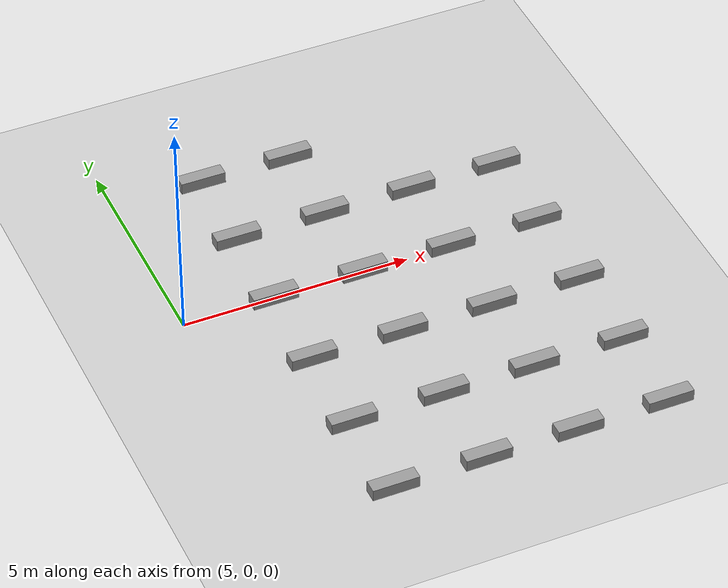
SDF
<sdf version="1.6">
 <world name="default">
  <model name="ground_plane">
   <static>1</static>
   <link name="link">
    <collision name="collision">
     <geometry><plane><normal>0 0 1</normal><size>100 100</size></plane></geometry>
     <surface><friction><ode><mu>100</mu><mu2>50</mu2></ode></friction></surface>
    </collision>
    <visual name="visual">
     <cast_shadows>0</cast_shadows>
     <geometry><plane><normal>0 0 1</normal><size>100 100</size></plane></geometry>
     <material>
      <script><uri>file://media/materials/scripts/gazebo.material</uri><name>Gazebo/Grey</name></script>
     </material>
    </visual>
   </link>
  </model>
  <model name="ss1_0_clone_1">
   <link name="link_0">
    <inertial>
     <mass>1</mass>
     <inertia>
      <ixx>0.166667</ixx>
      <ixy>0</ixy>
      <ixz>0</ixz>
      <iyy>0.166667</iyy>
      <iyz>0</iyz>
      <izz>0.166667</izz>
     </inertia>
    </inertial>
    <visual name="visual">
     <geometry><box><size>0.3 1 0.5</size></box></geometry>
     <material>
      <lighting>1</lighting>
      <script><uri>file://media/materials/scripts/gazebo.material</uri><name>Gazebo/Grey</name></script>
      <ambient>0.3 0.3 0.3 1</ambient>
      <diffuse>0.7 0.7 0.7 1</diffuse>
      <specular>0.01 0.01 0.01 1</specular>
      <emissive>0 0 0 1</emissive>
      <shader type="vertex"><normal_map>__default__</normal_map></shader>
     </material>
    </visual>
    <collision name="collision">
     <geometry><box><size>0.3 1 0.5</size></box></geometry>
     <surface>
      <friction>
       <ode><mu>1</mu><mu2>1</mu2><fdir1>0 0 0</fdir1><slip1>0</slip1><slip2>0</slip2></ode>
       <torsional>
        <coefficient>1</coefficient>
        <patch_radius>0</patch_radius>
        <surface_radius>0</surface_radius>
        <use_patch_radius>1</use_patch_radius>
        <ode><slip>0</slip></ode>
       </torsional>
      </friction>
      <bounce><restitution_coefficient>0</restitution_coefficient><threshold>1e+06</threshold></bounce>
      <contact>
       <collide_without_contact>0</collide_without_contact>
       <collide_without_contact_bitmask>1</collide_without_contact_bitmask>
       <collide_bitmask>1</collide_bitmask>
       <ode>
        <soft_cfm>0</soft_cfm>
        <soft_erp>0.2</soft_erp>
        <kp>1e+13</kp>
        <kd>1</kd>
        <max_vel>0.01</max_vel>
        <min_depth>0</min_depth>
       </ode>
       <bullet>
        <split_impulse>1</split_impulse>
        <split_impulse_penetration_threshold>-0.01</split_impulse_penetration_threshold>
        <soft_cfm>0</soft_cfm>
        <soft_erp>0.2</soft_erp>
        <kp>1e+13</kp>
        <kd>1</kd>
       </bullet>
      </contact>
     </surface>
    </collision>
   </link>
   <static>0</static>
   <pose>7 -6 0 0 -0 1.5708</pose>
  </model>
  <model name="ss1_0_clone_2">
   <link name="link_0">
    <inertial>
     <mass>1</mass>
     <inertia>
      <ixx>0.166667</ixx>
      <ixy>0</ixy>
      <ixz>0</ixz>
      <iyy>0.166667</iyy>
      <iyz>0</iyz>
      <izz>0.166667</izz>
     </inertia>
    </inertial>
    <visual name="visual">
     <geometry><box><size>0.3 1 0.5</size></box></geometry>
     <material>
      <lighting>1</lighting>
      <script><uri>file://media/materials/scripts/gazebo.material</uri><name>Gazebo/Grey</name></script>
      <ambient>0.3 0.3 0.3 1</ambient>
      <diffuse>0.7 0.7 0.7 1</diffuse>
      <specular>0.01 0.01 0.01 1</specular>
      <emissive>0 0 0 1</emissive>
      <shader type="vertex"><normal_map>__default__</normal_map></shader>
     </material>
    </visual>
    <collision name="collision">
     <geometry><box><size>0.3 1 0.5</size></box></geometry>
     <surface>
      <friction>
       <ode><mu>1</mu><mu2>1</mu2><fdir1>0 0 0</fdir1><slip1>0</slip1><slip2>0</slip2></ode>
       <torsional>
        <coefficient>1</coefficient>
        <patch_radius>0</patch_radius>
        <surface_radius>0</surface_radius>
        <use_patch_radius>1</use_patch_radius>
        <ode><slip>0</slip></ode>
       </torsional>
      </friction>
      <bounce><restitution_coefficient>0</restitution_coefficient><threshold>1e+06</threshold></bounce>
      <contact>
       <collide_without_contact>0</collide_without_contact>
       <collide_without_contact_bitmask>1</collide_without_contact_bitmask>
       <collide_bitmask>1</collide_bitmask>
       <ode>
        <soft_cfm>0</soft_cfm>
        <soft_erp>0.2</soft_erp>
        <kp>1e+13</kp>
        <kd>1</kd>
        <max_vel>0.01</max_vel>
        <min_depth>0</min_depth>
       </ode>
       <bullet>
        <split_impulse>1</split_impulse>
        <split_impulse_penetration_threshold>-0.01</split_impulse_penetration_threshold>
        <soft_cfm>0</soft_cfm>
        <soft_erp>0.2</soft_erp>
        <kp>1e+13</kp>
        <kd>1</kd>
       </bullet>
      </contact>
     </surface>
    </collision>
   </link>
   <static>0</static>
   <pose>9 -6 0 0 -0 1.5708</pose>
  </model>
  <model name="ss1_0_clone_3">
   <link name="link_0">
    <inertial>
     <mass>1</mass>
     <inertia>
      <ixx>0.166667</ixx>
      <ixy>0</ixy>
      <ixz>0</ixz>
      <iyy>0.166667</iyy>
      <iyz>0</iyz>
      <izz>0.166667</izz>
     </inertia>
    </inertial>
    <visual name="visual">
     <geometry><box><size>0.3 1 0.5</size></box></geometry>
     <material>
      <lighting>1</lighting>
      <script><uri>file://media/materials/scripts/gazebo.material</uri><name>Gazebo/Grey</name></script>
      <ambient>0.3 0.3 0.3 1</ambient>
      <diffuse>0.7 0.7 0.7 1</diffuse>
      <specular>0.01 0.01 0.01 1</specular>
      <emissive>0 0 0 1</emissive>
      <shader type="vertex"><normal_map>__default__</normal_map></shader>
     </material>
    </visual>
    <collision name="collision">
     <geometry><box><size>0.3 1 0.5</size></box></geometry>
     <surface>
      <friction>
       <ode><mu>1</mu><mu2>1</mu2><fdir1>0 0 0</fdir1><slip1>0</slip1><slip2>0</slip2></ode>
       <torsional>
        <coefficient>1</coefficient>
        <patch_radius>0</patch_radius>
        <surface_radius>0</surface_radius>
        <use_patch_radius>1</use_patch_radius>
        <ode><slip>0</slip></ode>
       </torsional>
      </friction>
      <bounce><restitution_coefficient>0</restitution_coefficient><threshold>1e+06</threshold></bounce>
      <contact>
       <collide_without_contact>0</collide_without_contact>
       <collide_without_contact_bitmask>1</collide_without_contact_bitmask>
       <collide_bitmask>1</collide_bitmask>
       <ode>
        <soft_cfm>0</soft_cfm>
        <soft_erp>0.2</soft_erp>
        <kp>1e+13</kp>
        <kd>1</kd>
        <max_vel>0.01</max_vel>
        <min_depth>0</min_depth>
       </ode>
       <bullet>
        <split_impulse>1</split_impulse>
        <split_impulse_penetration_threshold>-0.01</split_impulse_penetration_threshold>
        <soft_cfm>0</soft_cfm>
        <soft_erp>0.2</soft_erp>
        <kp>1e+13</kp>
        <kd>1</kd>
       </bullet>
      </contact>
     </surface>
    </collision>
   </link>
   <static>0</static>
   <pose>11 -6 0 0 -0 1.5708</pose>
  </model>
  <model name="ss1_0_clone_4">
   <link name="link_0">
    <inertial>
     <mass>1</mass>
     <inertia>
      <ixx>0.166667</ixx>
      <ixy>0</ixy>
      <ixz>0</ixz>
      <iyy>0.166667</iyy>
      <iyz>0</iyz>
      <izz>0.166667</izz>
     </inertia>
    </inertial>
    <visual name="visual">
     <geometry><box><size>0.3 1 0.5</size></box></geometry>
     <material>
      <lighting>1</lighting>
      <script><uri>file://media/materials/scripts/gazebo.material</uri><name>Gazebo/Grey</name></script>
      <ambient>0.3 0.3 0.3 1</ambient>
      <diffuse>0.7 0.7 0.7 1</diffuse>
      <specular>0.01 0.01 0.01 1</specular>
      <emissive>0 0 0 1</emissive>
      <shader type="vertex"><normal_map>__default__</normal_map></shader>
     </material>
    </visual>
    <collision name="collision">
     <geometry><box><size>0.3 1 0.5</size></box></geometry>
     <surface>
      <friction>
       <ode><mu>1</mu><mu2>1</mu2><fdir1>0 0 0</fdir1><slip1>0</slip1><slip2>0</slip2></ode>
       <torsional>
        <coefficient>1</coefficient>
        <patch_radius>0</patch_radius>
        <surface_radius>0</surface_radius>
        <use_patch_radius>1</use_patch_radius>
        <ode><slip>0</slip></ode>
       </torsional>
      </friction>
      <bounce><restitution_coefficient>0</restitution_coefficient><threshold>1e+06</threshold></bounce>
      <contact>
       <collide_without_contact>0</collide_without_contact>
       <collide_without_contact_bitmask>1</collide_without_contact_bitmask>
       <collide_bitmask>1</collide_bitmask>
       <ode>
        <soft_cfm>0</soft_cfm>
        <soft_erp>0.2</soft_erp>
        <kp>1e+13</kp>
        <kd>1</kd>
        <max_vel>0.01</max_vel>
        <min_depth>0</min_depth>
       </ode>
       <bullet>
        <split_impulse>1</split_impulse>
        <split_impulse_penetration_threshold>-0.01</split_impulse_penetration_threshold>
        <soft_cfm>0</soft_cfm>
        <soft_erp>0.2</soft_erp>
        <kp>1e+13</kp>
        <kd>1</kd>
       </bullet>
      </contact>
     </surface>
    </collision>
   </link>
   <static>0</static>
   <pose>13 -6 0 0 -0 1.5708</pose>
  </model>
  <model name="ss1_0_clone_clone_1">
   <link name="link_0">
    <inertial>
     <mass>1</mass>
     <inertia>
      <ixx>0.166667</ixx>
      <ixy>0</ixy>
      <ixz>0</ixz>
      <iyy>0.166667</iyy>
      <iyz>0</iyz>
      <izz>0.166667</izz>
     </inertia>
    </inertial>
    <visual name="visual">
     <geometry><box><size>0.3 1 0.5</size></box></geometry>
     <material>
      <lighting>1</lighting>
      <script><uri>file://media/materials/scripts/gazebo.material</uri><name>Gazebo/Grey</name></script>
      <ambient>0.3 0.3 0.3 1</ambient>
      <diffuse>0.7 0.7 0.7 1</diffuse>
      <specular>0.01 0.01 0.01 1</specular>
      <emissive>0 0 0 1</emissive>
      <shader type="vertex"><normal_map>__default__</normal_map></shader>
     </material>
    </visual>
    <collision name="collision">
     <geometry><box><size>0.3 1 0.5</size></box></geometry>
     <surface>
      <friction>
       <ode><mu>1</mu><mu2>1</mu2><fdir1>0 0 0</fdir1><slip1>0</slip1><slip2>0</slip2></ode>
       <torsional>
        <coefficient>1</coefficient>
        <patch_radius>0</patch_radius>
        <surface_radius>0</surface_radius>
        <use_patch_radius>1</use_patch_radius>
        <ode><slip>0</slip></ode>
       </torsional>
      </friction>
      <bounce><restitution_coefficient>0</restitution_coefficient><threshold>1e+06</threshold></bounce>
      <contact>
       <collide_without_contact>0</collide_without_contact>
       <collide_without_contact_bitmask>1</collide_without_contact_bitmask>
       <collide_bitmask>1</collide_bitmask>
       <ode>
        <soft_cfm>0</soft_cfm>
        <soft_erp>0.2</soft_erp>
        <kp>1e+13</kp>
        <kd>1</kd>
        <max_vel>0.01</max_vel>
        <min_depth>0</min_depth>
       </ode>
       <bullet>
        <split_impulse>1</split_impulse>
        <split_impulse_penetration_threshold>-0.01</split_impulse_penetration_threshold>
        <soft_cfm>0</soft_cfm>
        <soft_erp>0.2</soft_erp>
        <kp>1e+13</kp>
        <kd>1</kd>
       </bullet>
      </contact>
     </surface>
    </collision>
   </link>
   <static>0</static>
   <pose>7 -4 0 0 -0 1.5708</pose>
  </model>
  <model name="ss1_0_clone_clone_2">
   <link name="link_0">
    <inertial>
     <mass>1</mass>
     <inertia>
      <ixx>0.166667</ixx>
      <ixy>0</ixy>
      <ixz>0</ixz>
      <iyy>0.166667</iyy>
      <iyz>0</iyz>
      <izz>0.166667</izz>
     </inertia>
    </inertial>
    <visual name="visual">
     <geometry><box><size>0.3 1 0.5</size></box></geometry>
     <material>
      <lighting>1</lighting>
      <script><uri>file://media/materials/scripts/gazebo.material</uri><name>Gazebo/Grey</name></script>
      <ambient>0.3 0.3 0.3 1</ambient>
      <diffuse>0.7 0.7 0.7 1</diffuse>
      <specular>0.01 0.01 0.01 1</specular>
      <emissive>0 0 0 1</emissive>
      <shader type="vertex"><normal_map>__default__</normal_map></shader>
     </material>
    </visual>
    <collision name="collision">
     <geometry><box><size>0.3 1 0.5</size></box></geometry>
     <surface>
      <friction>
       <ode><mu>1</mu><mu2>1</mu2><fdir1>0 0 0</fdir1><slip1>0</slip1><slip2>0</slip2></ode>
       <torsional>
        <coefficient>1</coefficient>
        <patch_radius>0</patch_radius>
        <surface_radius>0</surface_radius>
        <use_patch_radius>1</use_patch_radius>
        <ode><slip>0</slip></ode>
       </torsional>
      </friction>
      <bounce><restitution_coefficient>0</restitution_coefficient><threshold>1e+06</threshold></bounce>
      <contact>
       <collide_without_contact>0</collide_without_contact>
       <collide_without_contact_bitmask>1</collide_without_contact_bitmask>
       <collide_bitmask>1</collide_bitmask>
       <ode>
        <soft_cfm>0</soft_cfm>
        <soft_erp>0.2</soft_erp>
        <kp>1e+13</kp>
        <kd>1</kd>
        <max_vel>0.01</max_vel>
        <min_depth>0</min_depth>
       </ode>
       <bullet>
        <split_impulse>1</split_impulse>
        <split_impulse_penetration_threshold>-0.01</split_impulse_penetration_threshold>
        <soft_cfm>0</soft_cfm>
        <soft_erp>0.2</soft_erp>
        <kp>1e+13</kp>
        <kd>1</kd>
       </bullet>
      </contact>
     </surface>
    </collision>
   </link>
   <static>0</static>
   <pose>9 -4 0 0 -0 1.5708</pose>
  </model>
  <model name="ss1_0_clone_clone_3">
   <link name="link_0">
    <inertial>
     <mass>1</mass>
     <inertia>
      <ixx>0.166667</ixx>
      <ixy>0</ixy>
      <ixz>0</ixz>
      <iyy>0.166667</iyy>
      <iyz>0</iyz>
      <izz>0.166667</izz>
     </inertia>
    </inertial>
    <visual name="visual">
     <geometry><box><size>0.3 1 0.5</size></box></geometry>
     <material>
      <lighting>1</lighting>
      <script><uri>file://media/materials/scripts/gazebo.material</uri><name>Gazebo/Grey</name></script>
      <ambient>0.3 0.3 0.3 1</ambient>
      <diffuse>0.7 0.7 0.7 1</diffuse>
      <specular>0.01 0.01 0.01 1</specular>
      <emissive>0 0 0 1</emissive>
      <shader type="vertex"><normal_map>__default__</normal_map></shader>
     </material>
    </visual>
    <collision name="collision">
     <geometry><box><size>0.3 1 0.5</size></box></geometry>
     <surface>
      <friction>
       <ode><mu>1</mu><mu2>1</mu2><fdir1>0 0 0</fdir1><slip1>0</slip1><slip2>0</slip2></ode>
       <torsional>
        <coefficient>1</coefficient>
        <patch_radius>0</patch_radius>
        <surface_radius>0</surface_radius>
        <use_patch_radius>1</use_patch_radius>
        <ode><slip>0</slip></ode>
       </torsional>
      </friction>
      <bounce><restitution_coefficient>0</restitution_coefficient><threshold>1e+06</threshold></bounce>
      <contact>
       <collide_without_contact>0</collide_without_contact>
       <collide_without_contact_bitmask>1</collide_without_contact_bitmask>
       <collide_bitmask>1</collide_bitmask>
       <ode>
        <soft_cfm>0</soft_cfm>
        <soft_erp>0.2</soft_erp>
        <kp>1e+13</kp>
        <kd>1</kd>
        <max_vel>0.01</max_vel>
        <min_depth>0</min_depth>
       </ode>
       <bullet>
        <split_impulse>1</split_impulse>
        <split_impulse_penetration_threshold>-0.01</split_impulse_penetration_threshold>
        <soft_cfm>0</soft_cfm>
        <soft_erp>0.2</soft_erp>
        <kp>1e+13</kp>
        <kd>1</kd>
       </bullet>
      </contact>
     </surface>
    </collision>
   </link>
   <static>0</static>
   <pose>11 -4 0 0 -0 1.5708</pose>
  </model>
  <model name="ss1_0_clone_clone_4">
   <link name="link_0">
    <inertial>
     <mass>1</mass>
     <inertia>
      <ixx>0.166667</ixx>
      <ixy>0</ixy>
      <ixz>0</ixz>
      <iyy>0.166667</iyy>
      <iyz>0</iyz>
      <izz>0.166667</izz>
     </inertia>
    </inertial>
    <visual name="visual">
     <geometry><box><size>0.3 1 0.5</size></box></geometry>
     <material>
      <lighting>1</lighting>
      <script><uri>file://media/materials/scripts/gazebo.material</uri><name>Gazebo/Grey</name></script>
      <ambient>0.3 0.3 0.3 1</ambient>
      <diffuse>0.7 0.7 0.7 1</diffuse>
      <specular>0.01 0.01 0.01 1</specular>
      <emissive>0 0 0 1</emissive>
      <shader type="vertex"><normal_map>__default__</normal_map></shader>
     </material>
    </visual>
    <collision name="collision">
     <geometry><box><size>0.3 1 0.5</size></box></geometry>
     <surface>
      <friction>
       <ode><mu>1</mu><mu2>1</mu2><fdir1>0 0 0</fdir1><slip1>0</slip1><slip2>0</slip2></ode>
       <torsional>
        <coefficient>1</coefficient>
        <patch_radius>0</patch_radius>
        <surface_radius>0</surface_radius>
        <use_patch_radius>1</use_patch_radius>
        <ode><slip>0</slip></ode>
       </torsional>
      </friction>
      <bounce><restitution_coefficient>0</restitution_coefficient><threshold>1e+06</threshold></bounce>
      <contact>
       <collide_without_contact>0</collide_without_contact>
       <collide_without_contact_bitmask>1</collide_without_contact_bitmask>
       <collide_bitmask>1</collide_bitmask>
       <ode>
        <soft_cfm>0</soft_cfm>
        <soft_erp>0.2</soft_erp>
        <kp>1e+13</kp>
        <kd>1</kd>
        <max_vel>0.01</max_vel>
        <min_depth>0</min_depth>
       </ode>
       <bullet>
        <split_impulse>1</split_impulse>
        <split_impulse_penetration_threshold>-0.01</split_impulse_penetration_threshold>
        <soft_cfm>0</soft_cfm>
        <soft_erp>0.2</soft_erp>
        <kp>1e+13</kp>
        <kd>1</kd>
       </bullet>
      </contact>
     </surface>
    </collision>
   </link>
   <static>0</static>
   <pose>13 -4 0 0 -0 1.5708</pose>
  </model>
  <model name="ss1_0_clone_clone_7">
   <link name="link_0">
    <inertial>
     <mass>1</mass>
     <inertia>
      <ixx>0.166667</ixx>
      <ixy>0</ixy>
      <ixz>0</ixz>
      <iyy>0.166667</iyy>
      <iyz>0</iyz>
      <izz>0.166667</izz>
     </inertia>
    </inertial>
    <visual name="visual">
     <geometry><box><size>0.3 1 0.5</size></box></geometry>
     <material>
      <lighting>1</lighting>
      <script><uri>file://media/materials/scripts/gazebo.material</uri><name>Gazebo/Grey</name></script>
      <ambient>0.3 0.3 0.3 1</ambient>
      <diffuse>0.7 0.7 0.7 1</diffuse>
      <specular>0.01 0.01 0.01 1</specular>
      <emissive>0 0 0 1</emissive>
      <shader type="vertex"><normal_map>__default__</normal_map></shader>
     </material>
    </visual>
    <collision name="collision">
     <geometry><box><size>0.3 1 0.5</size></box></geometry>
     <surface>
      <friction>
       <ode><mu>1</mu><mu2>1</mu2><fdir1>0 0 0</fdir1><slip1>0</slip1><slip2>0</slip2></ode>
       <torsional>
        <coefficient>1</coefficient>
        <patch_radius>0</patch_radius>
        <surface_radius>0</surface_radius>
        <use_patch_radius>1</use_patch_radius>
        <ode><slip>0</slip></ode>
       </torsional>
      </friction>
      <bounce><restitution_coefficient>0</restitution_coefficient><threshold>1e+06</threshold></bounce>
      <contact>
       <collide_without_contact>0</collide_without_contact>
       <collide_without_contact_bitmask>1</collide_without_contact_bitmask>
       <collide_bitmask>1</collide_bitmask>
       <ode>
        <soft_cfm>0</soft_cfm>
        <soft_erp>0.2</soft_erp>
        <kp>1e+13</kp>
        <kd>1</kd>
        <max_vel>0.01</max_vel>
        <min_depth>0</min_depth>
       </ode>
       <bullet>
        <split_impulse>1</split_impulse>
        <split_impulse_penetration_threshold>-0.01</split_impulse_penetration_threshold>
        <soft_cfm>0</soft_cfm>
        <soft_erp>0.2</soft_erp>
        <kp>1e+13</kp>
        <kd>1</kd>
       </bullet>
      </contact>
     </surface>
    </collision>
   </link>
   <static>0</static>
   <pose>7 -2 0 0 -0 1.5708</pose>
  </model>
  <model name="ss1_0_clone_clone_8">
   <link name="link_0">
    <inertial>
     <mass>1</mass>
     <inertia>
      <ixx>0.166667</ixx>
      <ixy>0</ixy>
      <ixz>0</ixz>
      <iyy>0.166667</iyy>
      <iyz>0</iyz>
      <izz>0.166667</izz>
     </inertia>
    </inertial>
    <visual name="visual">
     <geometry><box><size>0.3 1 0.5</size></box></geometry>
     <material>
      <lighting>1</lighting>
      <script><uri>file://media/materials/scripts/gazebo.material</uri><name>Gazebo/Grey</name></script>
      <ambient>0.3 0.3 0.3 1</ambient>
      <diffuse>0.7 0.7 0.7 1</diffuse>
      <specular>0.01 0.01 0.01 1</specular>
      <emissive>0 0 0 1</emissive>
      <shader type="vertex"><normal_map>__default__</normal_map></shader>
     </material>
    </visual>
    <collision name="collision">
     <geometry><box><size>0.3 1 0.5</size></box></geometry>
     <surface>
      <friction>
       <ode><mu>1</mu><mu2>1</mu2><fdir1>0 0 0</fdir1><slip1>0</slip1><slip2>0</slip2></ode>
       <torsional>
        <coefficient>1</coefficient>
        <patch_radius>0</patch_radius>
        <surface_radius>0</surface_radius>
        <use_patch_radius>1</use_patch_radius>
        <ode><slip>0</slip></ode>
       </torsional>
      </friction>
      <bounce><restitution_coefficient>0</restitution_coefficient><threshold>1e+06</threshold></bounce>
      <contact>
       <collide_without_contact>0</collide_without_contact>
       <collide_without_contact_bitmask>1</collide_without_contact_bitmask>
       <collide_bitmask>1</collide_bitmask>
       <ode>
        <soft_cfm>0</soft_cfm>
        <soft_erp>0.2</soft_erp>
        <kp>1e+13</kp>
        <kd>1</kd>
        <max_vel>0.01</max_vel>
        <min_depth>0</min_depth>
       </ode>
       <bullet>
        <split_impulse>1</split_impulse>
        <split_impulse_penetration_threshold>-0.01</split_impulse_penetration_threshold>
        <soft_cfm>0</soft_cfm>
        <soft_erp>0.2</soft_erp>
        <kp>1e+13</kp>
        <kd>1</kd>
       </bullet>
      </contact>
     </surface>
    </collision>
   </link>
   <static>0</static>
   <pose>9 -2 0 0 -0 1.5708</pose>
  </model>
  <model name="ss1_0_clone_clone_9">
   <link name="link_0">
    <inertial>
     <mass>1</mass>
     <inertia>
      <ixx>0.166667</ixx>
      <ixy>0</ixy>
      <ixz>0</ixz>
      <iyy>0.166667</iyy>
      <iyz>0</iyz>
      <izz>0.166667</izz>
     </inertia>
    </inertial>
    <visual name="visual">
     <geometry><box><size>0.3 1 0.5</size></box></geometry>
     <material>
      <lighting>1</lighting>
      <script><uri>file://media/materials/scripts/gazebo.material</uri><name>Gazebo/Grey</name></script>
      <ambient>0.3 0.3 0.3 1</ambient>
      <diffuse>0.7 0.7 0.7 1</diffuse>
      <specular>0.01 0.01 0.01 1</specular>
      <emissive>0 0 0 1</emissive>
      <shader type="vertex"><normal_map>__default__</normal_map></shader>
     </material>
    </visual>
    <collision name="collision">
     <geometry><box><size>0.3 1 0.5</size></box></geometry>
     <surface>
      <friction>
       <ode><mu>1</mu><mu2>1</mu2><fdir1>0 0 0</fdir1><slip1>0</slip1><slip2>0</slip2></ode>
       <torsional>
        <coefficient>1</coefficient>
        <patch_radius>0</patch_radius>
        <surface_radius>0</surface_radius>
        <use_patch_radius>1</use_patch_radius>
        <ode><slip>0</slip></ode>
       </torsional>
      </friction>
      <bounce><restitution_coefficient>0</restitution_coefficient><threshold>1e+06</threshold></bounce>
      <contact>
       <collide_without_contact>0</collide_without_contact>
       <collide_without_contact_bitmask>1</collide_without_contact_bitmask>
       <collide_bitmask>1</collide_bitmask>
       <ode>
        <soft_cfm>0</soft_cfm>
        <soft_erp>0.2</soft_erp>
        <kp>1e+13</kp>
        <kd>1</kd>
        <max_vel>0.01</max_vel>
        <min_depth>0</min_depth>
       </ode>
       <bullet>
        <split_impulse>1</split_impulse>
        <split_impulse_penetration_threshold>-0.01</split_impulse_penetration_threshold>
        <soft_cfm>0</soft_cfm>
        <soft_erp>0.2</soft_erp>
        <kp>1e+13</kp>
        <kd>1</kd>
       </bullet>
      </contact>
     </surface>
    </collision>
   </link>
   <static>0</static>
   <pose>11 -2 0 0 -0 1.5708</pose>
  </model>
  <model name="ss1_0_clone_clone_10">
   <link name="link_0">
    <inertial>
     <mass>1</mass>
     <inertia>
      <ixx>0.166667</ixx>
      <ixy>0</ixy>
      <ixz>0</ixz>
      <iyy>0.166667</iyy>
      <iyz>0</iyz>
      <izz>0.166667</izz>
     </inertia>
    </inertial>
    <visual name="visual">
     <geometry><box><size>0.3 1 0.5</size></box></geometry>
     <material>
      <lighting>1</lighting>
      <script><uri>file://media/materials/scripts/gazebo.material</uri><name>Gazebo/Grey</name></script>
      <ambient>0.3 0.3 0.3 1</ambient>
      <diffuse>0.7 0.7 0.7 1</diffuse>
      <specular>0.01 0.01 0.01 1</specular>
      <emissive>0 0 0 1</emissive>
      <shader type="vertex"><normal_map>__default__</normal_map></shader>
     </material>
    </visual>
    <collision name="collision">
     <geometry><box><size>0.3 1 0.5</size></box></geometry>
     <surface>
      <friction>
       <ode><mu>1</mu><mu2>1</mu2><fdir1>0 0 0</fdir1><slip1>0</slip1><slip2>0</slip2></ode>
       <torsional>
        <coefficient>1</coefficient>
        <patch_radius>0</patch_radius>
        <surface_radius>0</surface_radius>
        <use_patch_radius>1</use_patch_radius>
        <ode><slip>0</slip></ode>
       </torsional>
      </friction>
      <bounce><restitution_coefficient>0</restitution_coefficient><threshold>1e+06</threshold></bounce>
      <contact>
       <collide_without_contact>0</collide_without_contact>
       <collide_without_contact_bitmask>1</collide_without_contact_bitmask>
       <collide_bitmask>1</collide_bitmask>
       <ode>
        <soft_cfm>0</soft_cfm>
        <soft_erp>0.2</soft_erp>
        <kp>1e+13</kp>
        <kd>1</kd>
        <max_vel>0.01</max_vel>
        <min_depth>0</min_depth>
       </ode>
       <bullet>
        <split_impulse>1</split_impulse>
        <split_impulse_penetration_threshold>-0.01</split_impulse_penetration_threshold>
        <soft_cfm>0</soft_cfm>
        <soft_erp>0.2</soft_erp>
        <kp>1e+13</kp>
        <kd>1</kd>
       </bullet>
      </contact>
     </surface>
    </collision>
   </link>
   <static>0</static>
   <pose>13 -2 0 0 -0 1.5708</pose>
  </model>
  <model name="ss1_0_clone_clone_13">
   <link name="link_0">
    <inertial>
     <mass>1</mass>
     <inertia>
      <ixx>0.166667</ixx>
      <ixy>0</ixy>
      <ixz>0</ixz>
      <iyy>0.166667</iyy>
      <iyz>0</iyz>
      <izz>0.166667</izz>
     </inertia>
    </inertial>
    <visual name="visual">
     <geometry><box><size>0.3 1 0.5</size></box></geometry>
     <material>
      <lighting>1</lighting>
      <script><uri>file://media/materials/scripts/gazebo.material</uri><name>Gazebo/Grey</name></script>
      <ambient>0.3 0.3 0.3 1</ambient>
      <diffuse>0.7 0.7 0.7 1</diffuse>
      <specular>0.01 0.01 0.01 1</specular>
      <emissive>0 0 0 1</emissive>
      <shader type="vertex"><normal_map>__default__</normal_map></shader>
     </material>
    </visual>
    <collision name="collision">
     <geometry><box><size>0.3 1 0.5</size></box></geometry>
     <surface>
      <friction>
       <ode><mu>1</mu><mu2>1</mu2><fdir1>0 0 0</fdir1><slip1>0</slip1><slip2>0</slip2></ode>
       <torsional>
        <coefficient>1</coefficient>
        <patch_radius>0</patch_radius>
        <surface_radius>0</surface_radius>
        <use_patch_radius>1</use_patch_radius>
        <ode><slip>0</slip></ode>
       </torsional>
      </friction>
      <bounce><restitution_coefficient>0</restitution_coefficient><threshold>1e+06</threshold></bounce>
      <contact>
       <collide_without_contact>0</collide_without_contact>
       <collide_without_contact_bitmask>1</collide_without_contact_bitmask>
       <collide_bitmask>1</collide_bitmask>
       <ode>
        <soft_cfm>0</soft_cfm>
        <soft_erp>0.2</soft_erp>
        <kp>1e+13</kp>
        <kd>1</kd>
        <max_vel>0.01</max_vel>
        <min_depth>0</min_depth>
       </ode>
       <bullet>
        <split_impulse>1</split_impulse>
        <split_impulse_penetration_threshold>-0.01</split_impulse_penetration_threshold>
        <soft_cfm>0</soft_cfm>
        <soft_erp>0.2</soft_erp>
        <kp>1e+13</kp>
        <kd>1</kd>
       </bullet>
      </contact>
     </surface>
    </collision>
   </link>
   <static>0</static>
   <pose>7 0 0 0 -0 1.5708</pose>
  </model>
  <model name="ss1_0_clone_clone_26">
   <link name="link_0">
    <inertial>
     <mass>1</mass>
     <inertia>
      <ixx>0.166667</ixx>
      <ixy>0</ixy>
      <ixz>0</ixz>
      <iyy>0.166667</iyy>
      <iyz>0</iyz>
      <izz>0.166667</izz>
     </inertia>
    </inertial>
    <visual name="visual">
     <geometry><box><size>0.3 1 0.5</size></box></geometry>
     <material>
      <lighting>1</lighting>
      <script><uri>file://media/materials/scripts/gazebo.material</uri><name>Gazebo/Grey</name></script>
      <ambient>0.3 0.3 0.3 1</ambient>
      <diffuse>0.7 0.7 0.7 1</diffuse>
      <specular>0.01 0.01 0.01 1</specular>
      <emissive>0 0 0 1</emissive>
      <shader type="vertex"><normal_map>__default__</normal_map></shader>
     </material>
    </visual>
    <collision name="collision">
     <geometry><box><size>0.3 1 0.5</size></box></geometry>
     <surface>
      <friction>
       <ode><mu>1</mu><mu2>1</mu2><fdir1>0 0 0</fdir1><slip1>0</slip1><slip2>0</slip2></ode>
       <torsional>
        <coefficient>1</coefficient>
        <patch_radius>0</patch_radius>
        <surface_radius>0</surface_radius>
        <use_patch_radius>1</use_patch_radius>
        <ode><slip>0</slip></ode>
       </torsional>
      </friction>
      <bounce><restitution_coefficient>0</restitution_coefficient><threshold>1e+06</threshold></bounce>
      <contact>
       <collide_without_contact>0</collide_without_contact>
       <collide_without_contact_bitmask>1</collide_without_contact_bitmask>
       <collide_bitmask>1</collide_bitmask>
       <ode>
        <soft_cfm>0</soft_cfm>
        <soft_erp>0.2</soft_erp>
        <kp>1e+13</kp>
        <kd>1</kd>
        <max_vel>0.01</max_vel>
        <min_depth>0</min_depth>
       </ode>
       <bullet>
        <split_impulse>1</split_impulse>
        <split_impulse_penetration_threshold>-0.01</split_impulse_penetration_threshold>
        <soft_cfm>0</soft_cfm>
        <soft_erp>0.2</soft_erp>
        <kp>1e+13</kp>
        <kd>1</kd>
       </bullet>
      </contact>
     </surface>
    </collision>
   </link>
   <static>0</static>
   <pose>7 2 0 0 -0 1.5708</pose>
  </model>
  <model name="ss1_0_clone_clone_27">
   <link name="link_0">
    <inertial>
     <mass>1</mass>
     <inertia>
      <ixx>0.166667</ixx>
      <ixy>0</ixy>
      <ixz>0</ixz>
      <iyy>0.166667</iyy>
      <iyz>0</iyz>
      <izz>0.166667</izz>
     </inertia>
    </inertial>
    <visual name="visual">
     <geometry><box><size>0.3 1 0.5</size></box></geometry>
     <material>
      <lighting>1</lighting>
      <script><uri>file://media/materials/scripts/gazebo.material</uri><name>Gazebo/Grey</name></script>
      <ambient>0.3 0.3 0.3 1</ambient>
      <diffuse>0.7 0.7 0.7 1</diffuse>
      <specular>0.01 0.01 0.01 1</specular>
      <emissive>0 0 0 1</emissive>
      <shader type="vertex"><normal_map>__default__</normal_map></shader>
     </material>
    </visual>
    <collision name="collision">
     <geometry><box><size>0.3 1 0.5</size></box></geometry>
     <surface>
      <friction>
       <ode><mu>1</mu><mu2>1</mu2><fdir1>0 0 0</fdir1><slip1>0</slip1><slip2>0</slip2></ode>
       <torsional>
        <coefficient>1</coefficient>
        <patch_radius>0</patch_radius>
        <surface_radius>0</surface_radius>
        <use_patch_radius>1</use_patch_radius>
        <ode><slip>0</slip></ode>
       </torsional>
      </friction>
      <bounce><restitution_coefficient>0</restitution_coefficient><threshold>1e+06</threshold></bounce>
      <contact>
       <collide_without_contact>0</collide_without_contact>
       <collide_without_contact_bitmask>1</collide_without_contact_bitmask>
       <collide_bitmask>1</collide_bitmask>
       <ode>
        <soft_cfm>0</soft_cfm>
        <soft_erp>0.2</soft_erp>
        <kp>1e+13</kp>
        <kd>1</kd>
        <max_vel>0.01</max_vel>
        <min_depth>0</min_depth>
       </ode>
       <bullet>
        <split_impulse>1</split_impulse>
        <split_impulse_penetration_threshold>-0.01</split_impulse_penetration_threshold>
        <soft_cfm>0</soft_cfm>
        <soft_erp>0.2</soft_erp>
        <kp>1e+13</kp>
        <kd>1</kd>
       </bullet>
      </contact>
     </surface>
    </collision>
   </link>
   <static>0</static>
   <pose>9 0 0 0 -0 1.5708</pose>
  </model>
  <model name="ss1_0_clone_clone_28">
   <link name="link_0">
    <inertial>
     <mass>1</mass>
     <inertia>
      <ixx>0.166667</ixx>
      <ixy>0</ixy>
      <ixz>0</ixz>
      <iyy>0.166667</iyy>
      <iyz>0</iyz>
      <izz>0.166667</izz>
     </inertia>
    </inertial>
    <visual name="visual">
     <geometry><box><size>0.3 1 0.5</size></box></geometry>
     <material>
      <lighting>1</lighting>
      <script><uri>file://media/materials/scripts/gazebo.material</uri><name>Gazebo/Grey</name></script>
      <ambient>0.3 0.3 0.3 1</ambient>
      <diffuse>0.7 0.7 0.7 1</diffuse>
      <specular>0.01 0.01 0.01 1</specular>
      <emissive>0 0 0 1</emissive>
      <shader type="vertex"><normal_map>__default__</normal_map></shader>
     </material>
    </visual>
    <collision name="collision">
     <geometry><box><size>0.3 1 0.5</size></box></geometry>
     <surface>
      <friction>
       <ode><mu>1</mu><mu2>1</mu2><fdir1>0 0 0</fdir1><slip1>0</slip1><slip2>0</slip2></ode>
       <torsional>
        <coefficient>1</coefficient>
        <patch_radius>0</patch_radius>
        <surface_radius>0</surface_radius>
        <use_patch_radius>1</use_patch_radius>
        <ode><slip>0</slip></ode>
       </torsional>
      </friction>
      <bounce><restitution_coefficient>0</restitution_coefficient><threshold>1e+06</threshold></bounce>
      <contact>
       <collide_without_contact>0</collide_without_contact>
       <collide_without_contact_bitmask>1</collide_without_contact_bitmask>
       <collide_bitmask>1</collide_bitmask>
       <ode>
        <soft_cfm>0</soft_cfm>
        <soft_erp>0.2</soft_erp>
        <kp>1e+13</kp>
        <kd>1</kd>
        <max_vel>0.01</max_vel>
        <min_depth>0</min_depth>
       </ode>
       <bullet>
        <split_impulse>1</split_impulse>
        <split_impulse_penetration_threshold>-0.01</split_impulse_penetration_threshold>
        <soft_cfm>0</soft_cfm>
        <soft_erp>0.2</soft_erp>
        <kp>1e+13</kp>
        <kd>1</kd>
       </bullet>
      </contact>
     </surface>
    </collision>
   </link>
   <static>0</static>
   <pose>11 0 0 0 -0 1.5708</pose>
  </model>
  <model name="ss1_0_clone_clone_29">
   <link name="link_0">
    <inertial>
     <mass>1</mass>
     <inertia>
      <ixx>0.166667</ixx>
      <ixy>0</ixy>
      <ixz>0</ixz>
      <iyy>0.166667</iyy>
      <iyz>0</iyz>
      <izz>0.166667</izz>
     </inertia>
    </inertial>
    <visual name="visual">
     <geometry><box><size>0.3 1 0.5</size></box></geometry>
     <material>
      <lighting>1</lighting>
      <script><uri>file://media/materials/scripts/gazebo.material</uri><name>Gazebo/Grey</name></script>
      <ambient>0.3 0.3 0.3 1</ambient>
      <diffuse>0.7 0.7 0.7 1</diffuse>
      <specular>0.01 0.01 0.01 1</specular>
      <emissive>0 0 0 1</emissive>
      <shader type="vertex"><normal_map>__default__</normal_map></shader>
     </material>
    </visual>
    <collision name="collision">
     <geometry><box><size>0.3 1 0.5</size></box></geometry>
     <surface>
      <friction>
       <ode><mu>1</mu><mu2>1</mu2><fdir1>0 0 0</fdir1><slip1>0</slip1><slip2>0</slip2></ode>
       <torsional>
        <coefficient>1</coefficient>
        <patch_radius>0</patch_radius>
        <surface_radius>0</surface_radius>
        <use_patch_radius>1</use_patch_radius>
        <ode><slip>0</slip></ode>
       </torsional>
      </friction>
      <bounce><restitution_coefficient>0</restitution_coefficient><threshold>1e+06</threshold></bounce>
      <contact>
       <collide_without_contact>0</collide_without_contact>
       <collide_without_contact_bitmask>1</collide_without_contact_bitmask>
       <collide_bitmask>1</collide_bitmask>
       <ode>
        <soft_cfm>0</soft_cfm>
        <soft_erp>0.2</soft_erp>
        <kp>1e+13</kp>
        <kd>1</kd>
        <max_vel>0.01</max_vel>
        <min_depth>0</min_depth>
       </ode>
       <bullet>
        <split_impulse>1</split_impulse>
        <split_impulse_penetration_threshold>-0.01</split_impulse_penetration_threshold>
        <soft_cfm>0</soft_cfm>
        <soft_erp>0.2</soft_erp>
        <kp>1e+13</kp>
        <kd>1</kd>
       </bullet>
      </contact>
     </surface>
    </collision>
   </link>
   <static>0</static>
   <pose>13 0 0 0 -0 1.5708</pose>
  </model>
  <model name="ss1_0_clone_clone_30">
   <link name="link_0">
    <inertial>
     <mass>1</mass>
     <inertia>
      <ixx>0.166667</ixx>
      <ixy>0</ixy>
      <ixz>0</ixz>
      <iyy>0.166667</iyy>
      <iyz>0</iyz>
      <izz>0.166667</izz>
     </inertia>
    </inertial>
    <visual name="visual">
     <geometry><box><size>0.3 1 0.5</size></box></geometry>
     <material>
      <lighting>1</lighting>
      <script><uri>file://media/materials/scripts/gazebo.material</uri><name>Gazebo/Grey</name></script>
      <ambient>0.3 0.3 0.3 1</ambient>
      <diffuse>0.7 0.7 0.7 1</diffuse>
      <specular>0.01 0.01 0.01 1</specular>
      <emissive>0 0 0 1</emissive>
      <shader type="vertex"><normal_map>__default__</normal_map></shader>
     </material>
    </visual>
    <collision name="collision">
     <geometry><box><size>0.3 1 0.5</size></box></geometry>
     <surface>
      <friction>
       <ode><mu>1</mu><mu2>1</mu2><fdir1>0 0 0</fdir1><slip1>0</slip1><slip2>0</slip2></ode>
       <torsional>
        <coefficient>1</coefficient>
        <patch_radius>0</patch_radius>
        <surface_radius>0</surface_radius>
        <use_patch_radius>1</use_patch_radius>
        <ode><slip>0</slip></ode>
       </torsional>
      </friction>
      <bounce><restitution_coefficient>0</restitution_coefficient><threshold>1e+06</threshold></bounce>
      <contact>
       <collide_without_contact>0</collide_without_contact>
       <collide_without_contact_bitmask>1</collide_without_contact_bitmask>
       <collide_bitmask>1</collide_bitmask>
       <ode>
        <soft_cfm>0</soft_cfm>
        <soft_erp>0.2</soft_erp>
        <kp>1e+13</kp>
        <kd>1</kd>
        <max_vel>0.01</max_vel>
        <min_depth>0</min_depth>
       </ode>
       <bullet>
        <split_impulse>1</split_impulse>
        <split_impulse_penetration_threshold>-0.01</split_impulse_penetration_threshold>
        <soft_cfm>0</soft_cfm>
        <soft_erp>0.2</soft_erp>
        <kp>1e+13</kp>
        <kd>1</kd>
       </bullet>
      </contact>
     </surface>
    </collision>
   </link>
   <static>0</static>
   <pose>13 2 0 0 -0 1.5708</pose>
  </model>
  <model name="ss1_0_clone_clone_31">
   <link name="link_0">
    <inertial>
     <mass>1</mass>
     <inertia>
      <ixx>0.166667</ixx>
      <ixy>0</ixy>
      <ixz>0</ixz>
      <iyy>0.166667</iyy>
      <iyz>0</iyz>
      <izz>0.166667</izz>
     </inertia>
    </inertial>
    <visual name="visual">
     <geometry><box><size>0.3 1 0.5</size></box></geometry>
     <material>
      <lighting>1</lighting>
      <script><uri>file://media/materials/scripts/gazebo.material</uri><name>Gazebo/Grey</name></script>
      <ambient>0.3 0.3 0.3 1</ambient>
      <diffuse>0.7 0.7 0.7 1</diffuse>
      <specular>0.01 0.01 0.01 1</specular>
      <emissive>0 0 0 1</emissive>
      <shader type="vertex"><normal_map>__default__</normal_map></shader>
     </material>
    </visual>
    <collision name="collision">
     <geometry><box><size>0.3 1 0.5</size></box></geometry>
     <surface>
      <friction>
       <ode><mu>1</mu><mu2>1</mu2><fdir1>0 0 0</fdir1><slip1>0</slip1><slip2>0</slip2></ode>
       <torsional>
        <coefficient>1</coefficient>
        <patch_radius>0</patch_radius>
        <surface_radius>0</surface_radius>
        <use_patch_radius>1</use_patch_radius>
        <ode><slip>0</slip></ode>
       </torsional>
      </friction>
      <bounce><restitution_coefficient>0</restitution_coefficient><threshold>1e+06</threshold></bounce>
      <contact>
       <collide_without_contact>0</collide_without_contact>
       <collide_without_contact_bitmask>1</collide_without_contact_bitmask>
       <collide_bitmask>1</collide_bitmask>
       <ode>
        <soft_cfm>0</soft_cfm>
        <soft_erp>0.2</soft_erp>
        <kp>1e+13</kp>
        <kd>1</kd>
        <max_vel>0.01</max_vel>
        <min_depth>0</min_depth>
       </ode>
       <bullet>
        <split_impulse>1</split_impulse>
        <split_impulse_penetration_threshold>-0.01</split_impulse_penetration_threshold>
        <soft_cfm>0</soft_cfm>
        <soft_erp>0.2</soft_erp>
        <kp>1e+13</kp>
        <kd>1</kd>
       </bullet>
      </contact>
     </surface>
    </collision>
   </link>
   <static>0</static>
   <pose>11 2 0 0 -0 1.5708</pose>
  </model>
  <model name="ss1_0_clone_clone_32">
   <link name="link_0">
    <inertial>
     <mass>1</mass>
     <inertia>
      <ixx>0.166667</ixx>
      <ixy>0</ixy>
      <ixz>0</ixz>
      <iyy>0.166667</iyy>
      <iyz>0</iyz>
      <izz>0.166667</izz>
     </inertia>
    </inertial>
    <visual name="visual">
     <geometry><box><size>0.3 1 0.5</size></box></geometry>
     <material>
      <lighting>1</lighting>
      <script><uri>file://media/materials/scripts/gazebo.material</uri><name>Gazebo/Grey</name></script>
      <ambient>0.3 0.3 0.3 1</ambient>
      <diffuse>0.7 0.7 0.7 1</diffuse>
      <specular>0.01 0.01 0.01 1</specular>
      <emissive>0 0 0 1</emissive>
      <shader type="vertex"><normal_map>__default__</normal_map></shader>
     </material>
    </visual>
    <collision name="collision">
     <geometry><box><size>0.3 1 0.5</size></box></geometry>
     <surface>
      <friction>
       <ode><mu>1</mu><mu2>1</mu2><fdir1>0 0 0</fdir1><slip1>0</slip1><slip2>0</slip2></ode>
       <torsional>
        <coefficient>1</coefficient>
        <patch_radius>0</patch_radius>
        <surface_radius>0</surface_radius>
        <use_patch_radius>1</use_patch_radius>
        <ode><slip>0</slip></ode>
       </torsional>
      </friction>
      <bounce><restitution_coefficient>0</restitution_coefficient><threshold>1e+06</threshold></bounce>
      <contact>
       <collide_without_contact>0</collide_without_contact>
       <collide_without_contact_bitmask>1</collide_without_contact_bitmask>
       <collide_bitmask>1</collide_bitmask>
       <ode>
        <soft_cfm>0</soft_cfm>
        <soft_erp>0.2</soft_erp>
        <kp>1e+13</kp>
        <kd>1</kd>
        <max_vel>0.01</max_vel>
        <min_depth>0</min_depth>
       </ode>
       <bullet>
        <split_impulse>1</split_impulse>
        <split_impulse_penetration_threshold>-0.01</split_impulse_penetration_threshold>
        <soft_cfm>0</soft_cfm>
        <soft_erp>0.2</soft_erp>
        <kp>1e+13</kp>
        <kd>1</kd>
       </bullet>
      </contact>
     </surface>
    </collision>
   </link>
   <static>0</static>
   <pose>9 2 0 0 -0 1.5708</pose>
  </model>
  <model name="ss1_0_clone_clone_33">
   <link name="link_0">
    <inertial>
     <mass>1</mass>
     <inertia>
      <ixx>0.166667</ixx>
      <ixy>0</ixy>
      <ixz>0</ixz>
      <iyy>0.166667</iyy>
      <iyz>0</iyz>
      <izz>0.166667</izz>
     </inertia>
    </inertial>
    <visual name="visual">
     <geometry><box><size>0.3 1 0.5</size></box></geometry>
     <material>
      <lighting>1</lighting>
      <script><uri>file://media/materials/scripts/gazebo.material</uri><name>Gazebo/Grey</name></script>
      <ambient>0.3 0.3 0.3 1</ambient>
      <diffuse>0.7 0.7 0.7 1</diffuse>
      <specular>0.01 0.01 0.01 1</specular>
      <emissive>0 0 0 1</emissive>
      <shader type="vertex"><normal_map>__default__</normal_map></shader>
     </material>
    </visual>
    <collision name="collision">
     <geometry><box><size>0.3 1 0.5</size></box></geometry>
     <surface>
      <friction>
       <ode><mu>1</mu><mu2>1</mu2><fdir1>0 0 0</fdir1><slip1>0</slip1><slip2>0</slip2></ode>
       <torsional>
        <coefficient>1</coefficient>
        <patch_radius>0</patch_radius>
        <surface_radius>0</surface_radius>
        <use_patch_radius>1</use_patch_radius>
        <ode><slip>0</slip></ode>
       </torsional>
      </friction>
      <bounce><restitution_coefficient>0</restitution_coefficient><threshold>1e+06</threshold></bounce>
      <contact>
       <collide_without_contact>0</collide_without_contact>
       <collide_without_contact_bitmask>1</collide_without_contact_bitmask>
       <collide_bitmask>1</collide_bitmask>
       <ode>
        <soft_cfm>0</soft_cfm>
        <soft_erp>0.2</soft_erp>
        <kp>1e+13</kp>
        <kd>1</kd>
        <max_vel>0.01</max_vel>
        <min_depth>0</min_depth>
       </ode>
       <bullet>
        <split_impulse>1</split_impulse>
        <split_impulse_penetration_threshold>-0.01</split_impulse_penetration_threshold>
        <soft_cfm>0</soft_cfm>
        <soft_erp>0.2</soft_erp>
        <kp>1e+13</kp>
        <kd>1</kd>
       </bullet>
      </contact>
     </surface>
    </collision>
   </link>
   <static>0</static>
   <pose>7 4 0 0 -0 1.5708</pose>
  </model>
  <model name="ss1_0_clone_clone_34">
   <link name="link_0">
    <inertial>
     <mass>1</mass>
     <inertia>
      <ixx>0.166667</ixx>
      <ixy>0</ixy>
      <ixz>0</ixz>
      <iyy>0.166667</iyy>
      <iyz>0</iyz>
      <izz>0.166667</izz>
     </inertia>
    </inertial>
    <visual name="visual">
     <geometry><box><size>0.3 1 0.5</size></box></geometry>
     <material>
      <lighting>1</lighting>
      <script><uri>file://media/materials/scripts/gazebo.material</uri><name>Gazebo/Grey</name></script>
      <ambient>0.3 0.3 0.3 1</ambient>
      <diffuse>0.7 0.7 0.7 1</diffuse>
      <specular>0.01 0.01 0.01 1</specular>
      <emissive>0 0 0 1</emissive>
      <shader type="vertex"><normal_map>__default__</normal_map></shader>
     </material>
    </visual>
    <collision name="collision">
     <geometry><box><size>0.3 1 0.5</size></box></geometry>
     <surface>
      <friction>
       <ode><mu>1</mu><mu2>1</mu2><fdir1>0 0 0</fdir1><slip1>0</slip1><slip2>0</slip2></ode>
       <torsional>
        <coefficient>1</coefficient>
        <patch_radius>0</patch_radius>
        <surface_radius>0</surface_radius>
        <use_patch_radius>1</use_patch_radius>
        <ode><slip>0</slip></ode>
       </torsional>
      </friction>
      <bounce><restitution_coefficient>0</restitution_coefficient><threshold>1e+06</threshold></bounce>
      <contact>
       <collide_without_contact>0</collide_without_contact>
       <collide_without_contact_bitmask>1</collide_without_contact_bitmask>
       <collide_bitmask>1</collide_bitmask>
       <ode>
        <soft_cfm>0</soft_cfm>
        <soft_erp>0.2</soft_erp>
        <kp>1e+13</kp>
        <kd>1</kd>
        <max_vel>0.01</max_vel>
        <min_depth>0</min_depth>
       </ode>
       <bullet>
        <split_impulse>1</split_impulse>
        <split_impulse_penetration_threshold>-0.01</split_impulse_penetration_threshold>
        <soft_cfm>0</soft_cfm>
        <soft_erp>0.2</soft_erp>
        <kp>1e+13</kp>
        <kd>1</kd>
       </bullet>
      </contact>
     </surface>
    </collision>
   </link>
   <static>0</static>
   <pose>9 4 0 0 -0 1.5708</pose>
  </model>
 </world>
</sdf>
